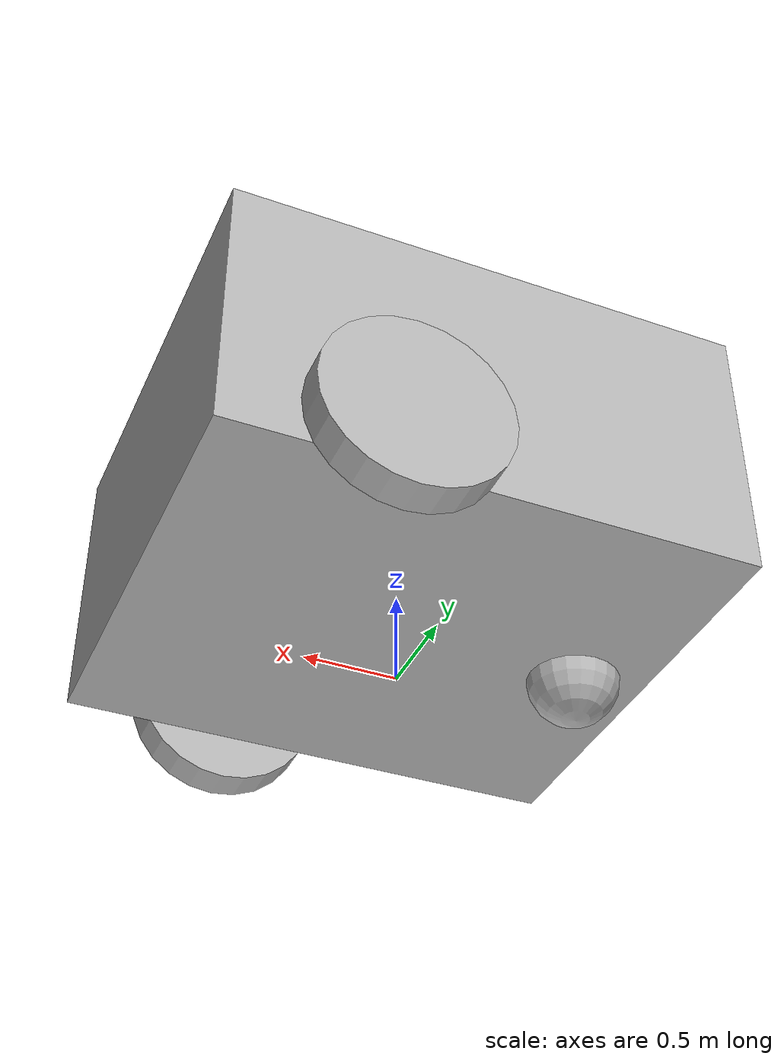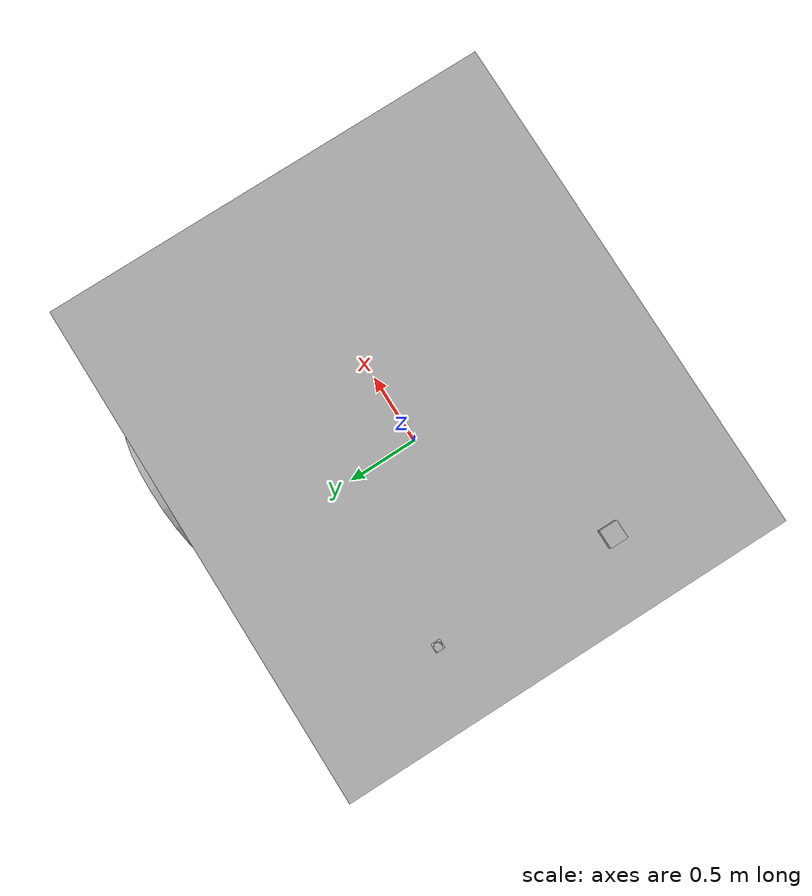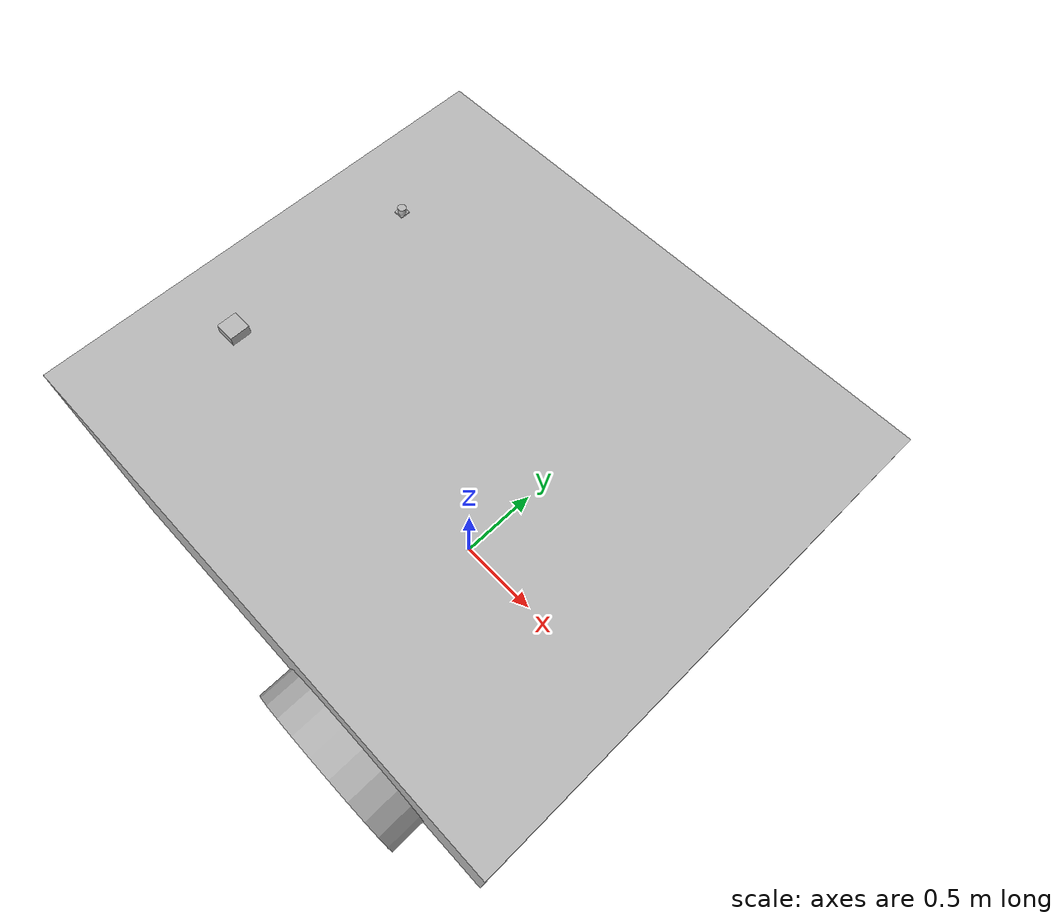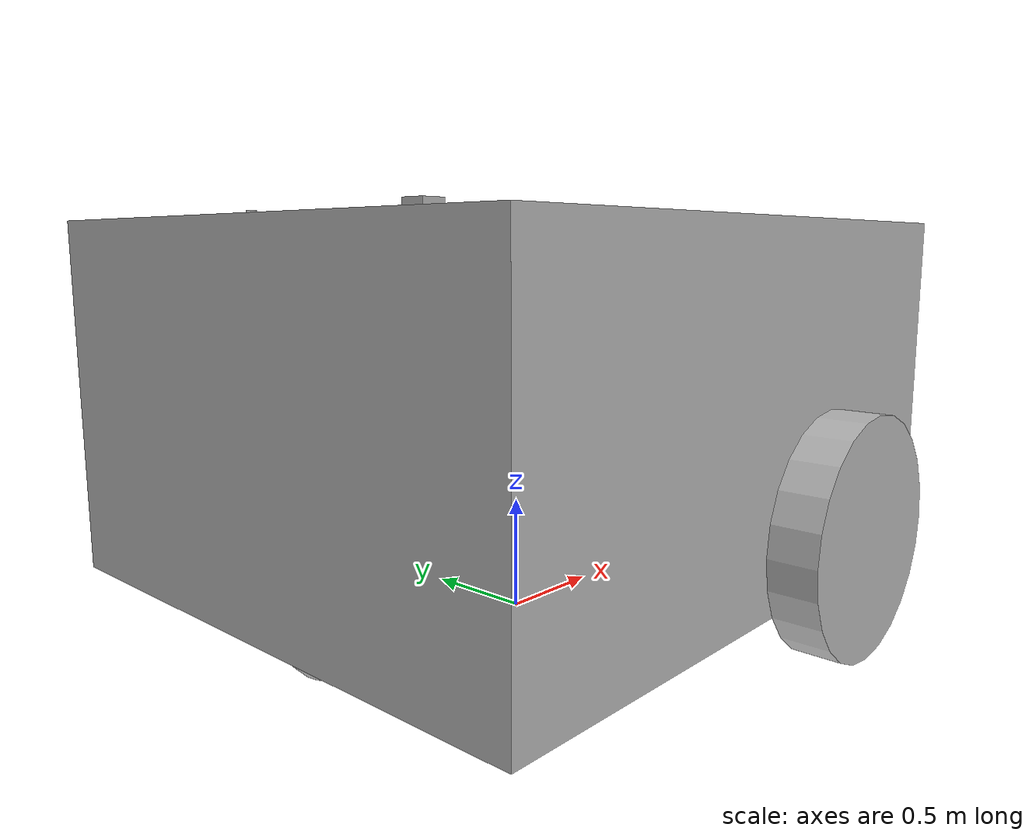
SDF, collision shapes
<?xml version='1.0'?>
<sdf version='1.4'>
  <model name="Snowbots">
   <static>false</static>
	<link name='chassis'>
	    <pose>0 0 1 0 0 0</pose>

	    <collision name='collision'>
	      <geometry>
		<box>
		  <size>2.8 2.5 1.5</size>
		</box>
	      </geometry>
	    </collision>

	    <visual name='visual'>
	      <geometry>
		<box>
		  <size>2.8 2.5 1.5</size>
		</box>
	      </geometry>
	    </visual>

          <collision name='caster_collision'>
            <pose>-1.02 0 -0.75 0 0 0</pose>
            <geometry>
                <sphere>
                <radius>.25</radius>
              </sphere>
            </geometry>

            <surface>
              <friction>
                <ode>
                  <mu>0</mu>
                  <mu2>0</mu2>
                  <slip1>1.0</slip1>
                  <slip2>1.0</slip2>
                </ode>
              </friction>
            </surface>
          </collision>

          <visual name='caster_visual'>
            <pose>-1.02 0 -0.75 0 0 0</pose>
            <geometry>
              <sphere>
                <radius>.25</radius>
              </sphere>
            </geometry>
          </visual>
  	</link>
      <link name="left_wheel">
        <pose>0.5 1.35 0.5 0 1.5707 1.5707</pose>
        <collision name="collision">
          <geometry>
            <cylinder>
              <radius>.5</radius>
              <length>.2</length>
            </cylinder>
          </geometry>
        </collision>
        <visual name="visual">
          <geometry>
            <cylinder>
              <radius>.5</radius>
              <length>.2</length>
            </cylinder>
          </geometry>
        </visual>
      </link>
      <link name="right_wheel">
        <pose>0.5 -1.35 0.5 0 1.5707 1.5707</pose>
        <collision name="collision">
          <geometry>
            <cylinder>
              <radius>.5</radius>
              <length>.2</length>
            </cylinder>
          </geometry>
        </collision>
        <visual name="visual">
          <geometry>
            <cylinder>
              <radius>.5</radius>
              <length>.2</length>
            </cylinder>
          </geometry>
        </visual>
      </link>
      <joint type="revolute" name="left_wheel_hinge">
        <pose>0 0 -0.15 0 0 0</pose>
        <child>left_wheel</child>
        <parent>chassis</parent>
        <axis>
          <xyz>0 1 0</xyz>
        </axis>
      </joint>

      <joint type="revolute" name="right_wheel_hinge">
        <pose>0 0 0.15 0 0 0</pose>
        <child>right_wheel</child>
        <parent>chassis</parent>
        <axis>
          <xyz>0 1 0</xyz>
        </axis>
      </joint>

    <include>
      <uri>model://hokuyo</uri>
      <pose>-1 0.5 1.75 0 0 0</pose>
    </include>
    <joint name="hokuyo_joint" type="revolute">
      <child>hokuyo::link</child>
      <parent>chassis</parent>
      <axis>
	<xyz>0 0 1</xyz>
      </axis>
    </joint>

    <include>
      <uri>model://camera</uri>
      <pose>-1 -0.5 1.75 0 0 0</pose>
    </include>
    <joint name="camera_joint" type="revolute">
      <child>camera::link</child>
      <parent>chassis</parent>
      <axis>
	<xyz>0 0 1</xyz>
      </axis>
    </joint>
  </model>
</sdf>

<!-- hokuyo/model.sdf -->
<sdf version="1.5">
  <model name="hokuyo">
    <pose>0 0 0.035 0 0 0</pose>
    <link name="link">
      <inertial>
        <mass>0.1</mass>
      </inertial>
      <visual name="visual">
        <geometry>
          <mesh>
            <uri>model://../model_source/models/hokuyo/meshes/hokuyo.dae</uri>
          </mesh>
        </geometry>
      </visual>
      <collision name="collision-base">
        <pose>0 0 -0.0145 0 0 0</pose>
        <geometry>
          <box>
            <size>0.05 0.05 0.041</size>
          </box>
        </geometry>
      </collision>
      <collision name="collision-top">
        <pose>0 0 0.0205 0 0 0</pose>
        <geometry>
          <cylinder>
            <radius>0.021</radius>
            <length>0.029</length>
          </cylinder>
        </geometry>
      </collision>
      <sensor name="laser" type="ray">
        <pose>0.01 0 0.0175 0 -0 0</pose>
        <ray>
          <scan>
            <horizontal>
              <samples>640</samples>
              <resolution>1</resolution>
              <min_angle>-2.26889</min_angle>
              <max_angle>2.268899</max_angle>
            </horizontal>
          </scan>
          <range>
            <min>0.08</min>
            <max>10</max>
            <resolution>0.01</resolution>
          </range>
        </ray>
        <plugin name="laser" filename="libRayPlugin.so" />
        <always_on>1</always_on>
        <update_rate>30</update_rate>
        <visualize>true</visualize>
      </sensor>
    </link>
  </model>
</sdf>

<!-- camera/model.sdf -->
<sdf version="1.5">
  <model name="camera">
    <pose>0 0 0.05 0 0 0</pose>
    <link name="link">
      <inertial>
        <mass>0.1</mass>
        <inertia>
          <ixx>0.000166667</ixx>
          <iyy>0.000166667</iyy>
          <izz>0.000166667</izz>
        </inertia>
      </inertial>
      <collision name="collision">
        <geometry>
          <box>
            <size>0.1 0.1 0.1</size>
          </box>
        </geometry>
      </collision>
      <visual name="visual">
        <geometry>
          <box>
            <size>0.1 0.1 0.1</size>
          </box>
        </geometry>
      </visual>
      <sensor name="camera" type="camera">
        <camera>
          <horizontal_fov>1.047</horizontal_fov>
          <image>
            <width>320</width>
            <height>240</height>
          </image>
          <clip>
            <near>0.1</near>
            <far>100</far>
          </clip>
        </camera>
        <always_on>1</always_on>
        <update_rate>30</update_rate>
        <visualize>true</visualize>
      </sensor>
    </link>
  </model>
</sdf>
